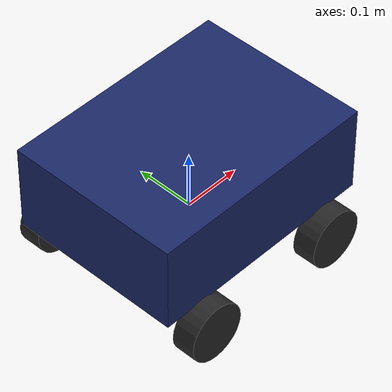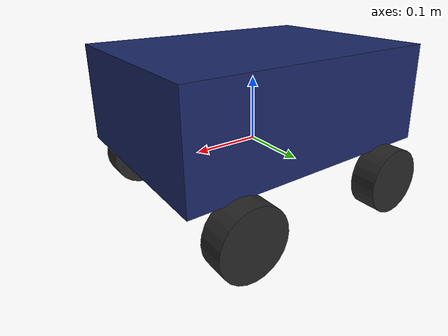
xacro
<?xml version="1.0"?>
<!-- ROS-side URDF for the pathfinder diff-drive car.
     This drives robot_state_publisher / TF only. The Gazebo simulation
     uses gazebo/car.sdf (which carries the DiffDrive plugin). -->
<robot name="pathfinder_car" xmlns:xacro="http://www.ros.org/wiki/xacro">

  <xacro:property name="base_size_x" value="0.40"/>
  <xacro:property name="base_size_y" value="0.30"/>
  <xacro:property name="base_size_z" value="0.15"/>
  <xacro:property name="base_mass"   value="2.0"/>

  <xacro:property name="wheel_radius"     value="0.05"/>
  <xacro:property name="wheel_width"      value="0.04"/>
  <xacro:property name="wheel_mass"       value="0.1"/>
  <xacro:property name="wheel_separation" value="0.32"/>
  <xacro:property name="wheelbase"        value="0.26"/>

  <material name="car_dark_blue">
    <color rgba="0.1 0.15 0.4 1.0"/>
  </material>
  <material name="wheel_dark_gray">
    <color rgba="0.15 0.15 0.15 1.0"/>
  </material>

  <link name="base_link">
    <visual>
      <origin xyz="0 0 0.075"/>
      <geometry>
        <box size="${base_size_x} ${base_size_y} ${base_size_z}"/>
      </geometry>
      <material name="car_dark_blue"/>
    </visual>
    <collision>
      <origin xyz="0 0 0.075"/>
      <geometry>
        <box size="${base_size_x} ${base_size_y} ${base_size_z}"/>
      </geometry>
    </collision>
    <inertial>
      <mass value="${base_mass}"/>
      <inertia
        ixx="${base_mass * (base_size_y*base_size_y + base_size_z*base_size_z) / 12.0}"
        iyy="${base_mass * (base_size_x*base_size_x + base_size_z*base_size_z) / 12.0}"
        izz="${base_mass * (base_size_x*base_size_x + base_size_y*base_size_y) / 12.0}"
        ixy="0" ixz="0" iyz="0"/>
    </inertial>
  </link>

  <xacro:macro name="wheel" params="suffix x_sign y_sign">
    <link name="wheel_${suffix}">
      <visual>
        <origin xyz="0 0 0" rpy="${pi/2} 0 0"/>
        <geometry>
          <cylinder radius="${wheel_radius}" length="${wheel_width}"/>
        </geometry>
        <material name="wheel_dark_gray"/>
      </visual>
      <collision>
        <origin xyz="0 0 0" rpy="${pi/2} 0 0"/>
        <geometry>
          <cylinder radius="${wheel_radius}" length="${wheel_width}"/>
        </geometry>
      </collision>
      <inertial>
        <mass value="${wheel_mass}"/>
        <inertia
          ixx="${wheel_mass * (3*wheel_radius*wheel_radius + wheel_width*wheel_width) / 12.0}"
          iyy="${wheel_mass * wheel_radius*wheel_radius / 2.0}"
          izz="${wheel_mass * (3*wheel_radius*wheel_radius + wheel_width*wheel_width) / 12.0}"
          ixy="0" ixz="0" iyz="0"/>
      </inertial>
    </link>
    <joint name="${suffix}_wheel_joint" type="continuous">
      <parent link="base_link"/>
      <child link="wheel_${suffix}"/>
      <origin
        xyz="${x_sign * wheelbase / 2.0} ${y_sign * wheel_separation / 2.0} ${-base_size_z/2 + wheel_radius - 0.02}"
        rpy="0 0 0"/>
      <axis xyz="0 1 0"/>
    </joint>
  </xacro:macro>

  <!-- Visual-only 4-wheel layout (front/rear, left/right). Gazebo physics in
       car.sdf still treats this as a diff-drive with 2 driven wheels. -->
  <xacro:wheel suffix="fl" x_sign="1"  y_sign="1"/>
  <xacro:wheel suffix="fr" x_sign="1"  y_sign="-1"/>
  <xacro:wheel suffix="rl" x_sign="-1" y_sign="1"/>
  <xacro:wheel suffix="rr" x_sign="-1" y_sign="-1"/>

</robot>
